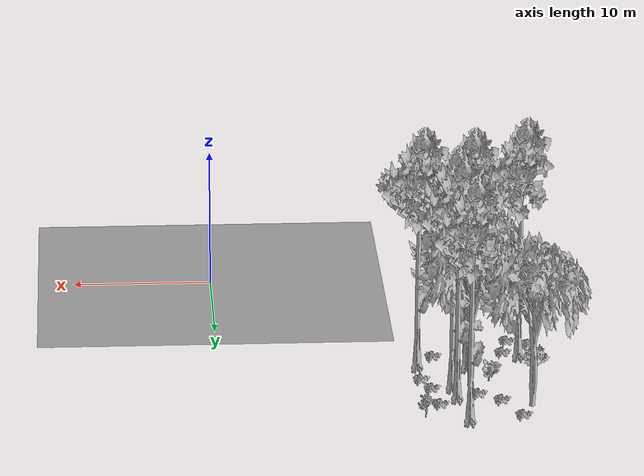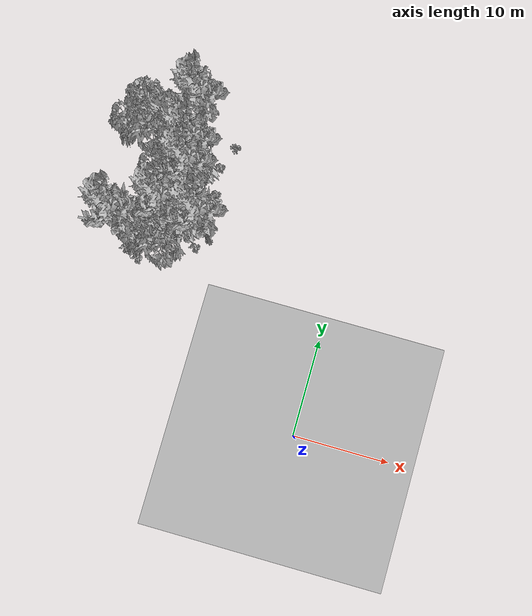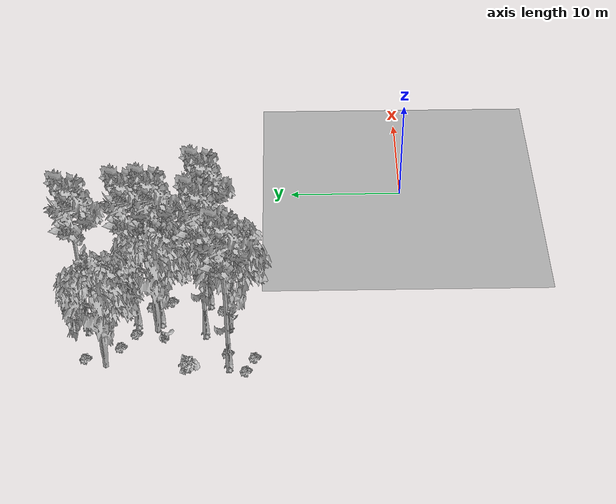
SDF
<sdf version="1.7">
 <world name="default">
  <model name="ground_plane">
   <static>1</static>
   <link name="link">
    <collision name="collision">
     <pose>-50 0 0 0 -0 0</pose>
     <geometry><plane><normal>0 0 1</normal><size>80 80</size></plane></geometry>
     <surface><contact><ode><min_depth>0.01</min_depth><max_vel>0</max_vel></ode></contact></surface>
    </collision>
    <visual name="grass">
     <cast_shadows>0</cast_shadows>
     <geometry>
      <mesh>
       <scale>0.46714285714285714 0.46714285714285714 0.1</scale>
       <uri>file://grass_plane/meshes/grass_plane.dae</uri>
      </mesh>
     </geometry>
    </visual>
   </link>
  </model>
  <model name="Tree 215">
   <static>1</static>
   <pose>-21.153223636318213 15.251283001355446 0 1.57079 -0 0</pose>
   <link name="link">
    <collision name="collision">
     <geometry><mesh><scale>3.5 5 3.5</scale><uri>model://tree_9/meshes/tree_9.obj</uri></mesh></geometry>
    </collision>
    <visual name="visual">
     <geometry><mesh><scale>3.5 5 3.5</scale><uri>model://tree_9/meshes/tree_9.obj</uri></mesh></geometry>
    </visual>
   </link>
  </model>
  <model name="Tree 253">
   <static>1</static>
   <pose>-16.202000682654067 22.970142776075697 0 1.57079 -0 0</pose>
   <link name="link">
    <collision name="collision">
     <geometry><mesh><scale>3.5 5 3.5</scale><uri>model://tree_9/meshes/tree_9.obj</uri></mesh></geometry>
    </collision>
    <visual name="visual">
     <geometry><mesh><scale>3.5 5 3.5</scale><uri>model://tree_9/meshes/tree_9.obj</uri></mesh></geometry>
    </visual>
   </link>
  </model>
  <model name="Tree 360">
   <static>1</static>
   <pose>-16.001091045612633 21.008470187019554 0 1.57079 -0 0</pose>
   <link name="link">
    <collision name="collision">
     <geometry><mesh><scale>3.5 5 3.5</scale><uri>model://tree_9/meshes/tree_9.obj</uri></mesh></geometry>
    </collision>
    <visual name="visual">
     <geometry><mesh><scale>3.5 5 3.5</scale><uri>model://tree_9/meshes/tree_9.obj</uri></mesh></geometry>
    </visual>
   </link>
  </model>
  <model name="Tree 435">
   <static>1</static>
   <pose>-17.513646760298695 15.22128792381936 0 1.57079 -0 0</pose>
   <link name="link">
    <collision name="collision">
     <geometry><mesh><scale>3.5 5 3.5</scale><uri>model://tree_2/meshes/tree_2.obj</uri></mesh></geometry>
    </collision>
    <visual name="visual">
     <geometry><mesh><scale>3.5 5 3.5</scale><uri>model://tree_2/meshes/tree_2.obj</uri></mesh></geometry>
    </visual>
   </link>
  </model>
  <model name="Tree 460">
   <static>1</static>
   <pose>-16.73608095522011 27.13260293383604 0 1.57079 -0 0</pose>
   <link name="link">
    <collision name="collision">
     <geometry><mesh><scale>3.5 5 3.5</scale><uri>model://tree_9/meshes/tree_9.obj</uri></mesh></geometry>
    </collision>
    <visual name="visual">
     <geometry><mesh><scale>3.5 5 3.5</scale><uri>model://tree_9/meshes/tree_9.obj</uri></mesh></geometry>
    </visual>
   </link>
  </model>
  <model name="Tree 465">
   <static>1</static>
   <pose>-17.355817036916513 17.26013249398239 0 1.57079 -0 0</pose>
   <link name="link">
    <collision name="collision">
     <geometry><mesh><scale>3.5 5 3.5</scale><uri>model://tree_9/meshes/tree_9.obj</uri></mesh></geometry>
    </collision>
    <visual name="visual">
     <geometry><mesh><scale>3.5 5 3.5</scale><uri>model://tree_9/meshes/tree_9.obj</uri></mesh></geometry>
    </visual>
   </link>
  </model>
  <model name="Tree 508">
   <static>1</static>
   <pose>-21.241281461936147 25.254190149325396 0 1.57079 -0 0</pose>
   <link name="link">
    <collision name="collision">
     <geometry><mesh><scale>3.5 5 3.5</scale><uri>model://tree_2/meshes/tree_2.obj</uri></mesh></geometry>
    </collision>
    <visual name="visual">
     <geometry><mesh><scale>3.5 5 3.5</scale><uri>model://tree_2/meshes/tree_2.obj</uri></mesh></geometry>
    </visual>
   </link>
  </model>
  <model name="Tree 532">
   <static>1</static>
   <pose>-17.357434409369926 21.249549831313637 0 1.57079 -0 0</pose>
   <link name="link">
    <collision name="collision">
     <geometry><mesh><scale>3.5 5 3.5</scale><uri>model://tree_2/meshes/tree_2.obj</uri></mesh></geometry>
    </collision>
    <visual name="visual">
     <geometry><mesh><scale>3.5 5 3.5</scale><uri>model://tree_2/meshes/tree_2.obj</uri></mesh></geometry>
    </visual>
   </link>
  </model>
  <model name="Tree 561">
   <static>1</static>
   <pose>-13.902613666812858 16.982020571642657 0 1.57079 -0 0</pose>
   <link name="link">
    <collision name="collision">
     <geometry><mesh><scale>3.5 5 3.5</scale><uri>model://tree_9/meshes/tree_9.obj</uri></mesh></geometry>
    </collision>
    <visual name="visual">
     <geometry><mesh><scale>3.5 5 3.5</scale><uri>model://tree_9/meshes/tree_9.obj</uri></mesh></geometry>
    </visual>
   </link>
  </model>
  <model name="Bush 42">
   <static>1</static>
   <pose>-13.942028592706322 20.186080810751584 0 1.57079 -0 0</pose>
   <link name="link">
    <collision name="collision">
     <geometry><mesh><scale>2 2 2</scale><uri>model://bush_2/meshes/bush_2.obj</uri></mesh></geometry>
     <surface><contact><collide_without_contact>false</collide_without_contact></contact></surface>
    </collision>
    <visual name="visual">
     <geometry><mesh><scale>2 2 2</scale><uri>model://bush_2/meshes/bush_2.obj</uri></mesh></geometry>
    </visual>
   </link>
  </model>
  <model name="Bush 46">
   <static>1</static>
   <pose>-17.668094830917617 22.998816513896536 0 1.57079 -0 0</pose>
   <link name="link">
    <collision name="collision">
     <geometry><mesh><scale>2 2 2</scale><uri>model://bush_2/meshes/bush_2.obj</uri></mesh></geometry>
     <surface><contact><collide_without_contact>false</collide_without_contact></contact></surface>
    </collision>
    <visual name="visual">
     <geometry><mesh><scale>2 2 2</scale><uri>model://bush_2/meshes/bush_2.obj</uri></mesh></geometry>
    </visual>
   </link>
  </model>
  <model name="Bush 110">
   <static>1</static>
   <pose>-20.026507941437643 15.351264943415899 0 1.57079 -0 0</pose>
   <link name="link">
    <collision name="collision">
     <geometry><mesh><scale>2 2 2</scale><uri>model://bush_2/meshes/bush_2.obj</uri></mesh></geometry>
     <surface><contact><collide_without_contact>false</collide_without_contact></contact></surface>
    </collision>
    <visual name="visual">
     <geometry><mesh><scale>2 2 2</scale><uri>model://bush_2/meshes/bush_2.obj</uri></mesh></geometry>
    </visual>
   </link>
  </model>
  <model name="Bush 276">
   <static>1</static>
   <pose>-15.077946800201321 15.86495696688096 0 1.57079 -0 0</pose>
   <link name="link">
    <collision name="collision">
     <geometry><mesh><scale>2 2 2</scale><uri>model://bush_2/meshes/bush_2.obj</uri></mesh></geometry>
     <surface><contact><collide_without_contact>false</collide_without_contact></contact></surface>
    </collision>
    <visual name="visual">
     <geometry><mesh><scale>2 2 2</scale><uri>model://bush_2/meshes/bush_2.obj</uri></mesh></geometry>
    </visual>
   </link>
  </model>
  <model name="Bush 281">
   <static>1</static>
   <pose>-14.931215684557312 24.77254393663698 0 1.57079 -0 0</pose>
   <link name="link">
    <collision name="collision">
     <geometry><mesh><scale>2 2 2</scale><uri>model://bush_2/meshes/bush_2.obj</uri></mesh></geometry>
     <surface><contact><collide_without_contact>false</collide_without_contact></contact></surface>
    </collision>
    <visual name="visual">
     <geometry><mesh><scale>2 2 2</scale><uri>model://bush_2/meshes/bush_2.obj</uri></mesh></geometry>
    </visual>
   </link>
  </model>
  <model name="Bush 317">
   <static>1</static>
   <pose>-13.724045086246985 27.035990182723296 0 1.57079 -0 0</pose>
   <link name="link">
    <collision name="collision">
     <geometry><mesh><scale>2 2 2</scale><uri>model://bush_5/meshes/bush_5.obj</uri></mesh></geometry>
     <surface><contact><collide_without_contact>false</collide_without_contact></contact></surface>
    </collision>
    <visual name="visual">
     <geometry><mesh><scale>2 2 2</scale><uri>model://bush_5/meshes/bush_5.obj</uri></mesh></geometry>
    </visual>
   </link>
  </model>
  <model name="Bush 401">
   <static>1</static>
   <pose>-19.172371079136077 24.18830953336655 0 1.57079 -0 0</pose>
   <link name="link">
    <collision name="collision">
     <geometry><mesh><scale>2 2 2</scale><uri>model://bush_2/meshes/bush_2.obj</uri></mesh></geometry>
     <surface><contact><collide_without_contact>false</collide_without_contact></contact></surface>
    </collision>
    <visual name="visual">
     <geometry><mesh><scale>2 2 2</scale><uri>model://bush_2/meshes/bush_2.obj</uri></mesh></geometry>
    </visual>
   </link>
  </model>
  <model name="Bush 431">
   <static>1</static>
   <pose>-20.52712446382393 13.142864073858917 0 1.57079 -0 0</pose>
   <link name="link">
    <collision name="collision">
     <geometry><mesh><scale>2 2 2</scale><uri>model://bush_2/meshes/bush_2.obj</uri></mesh></geometry>
     <surface><contact><collide_without_contact>false</collide_without_contact></contact></surface>
    </collision>
    <visual name="visual">
     <geometry><mesh><scale>2 2 2</scale><uri>model://bush_2/meshes/bush_2.obj</uri></mesh></geometry>
    </visual>
   </link>
  </model>
  <model name="Bush 477">
   <static>1</static>
   <pose>-22.007631482222198 13.850349579756873 0 1.57079 -0 0</pose>
   <link name="link">
    <collision name="collision">
     <geometry><mesh><scale>2 2 2</scale><uri>model://bush_2/meshes/bush_2.obj</uri></mesh></geometry>
     <surface><contact><collide_without_contact>false</collide_without_contact></contact></surface>
    </collision>
    <visual name="visual">
     <geometry><mesh><scale>2 2 2</scale><uri>model://bush_2/meshes/bush_2.obj</uri></mesh></geometry>
    </visual>
   </link>
  </model>
  <model name="Bush 513">
   <static>1</static>
   <pose>-20.390498994414788 26.99418110639742 0 1.57079 -0 0</pose>
   <link name="link">
    <collision name="collision">
     <geometry><mesh><scale>2 2 2</scale><uri>model://bush_2/meshes/bush_2.obj</uri></mesh></geometry>
     <surface><contact><collide_without_contact>false</collide_without_contact></contact></surface>
    </collision>
    <visual name="visual">
     <geometry><mesh><scale>2 2 2</scale><uri>model://bush_2/meshes/bush_2.obj</uri></mesh></geometry>
    </visual>
   </link>
  </model>
  <model name="Bush 598">
   <static>1</static>
   <pose>-18.616377942555676 20.587447106951885 0 1.57079 -0 0</pose>
   <link name="link">
    <collision name="collision">
     <geometry><mesh><scale>2 2 2</scale><uri>model://bush_0/meshes/bush_0.obj</uri></mesh></geometry>
     <surface><contact><collide_without_contact>false</collide_without_contact></contact></surface>
    </collision>
    <visual name="visual">
     <geometry><mesh><scale>2 2 2</scale><uri>model://bush_0/meshes/bush_0.obj</uri></mesh></geometry>
    </visual>
   </link>
  </model>
  <model name="Bush 603">
   <static>1</static>
   <pose>-14.554280538438665 21.85923691384741 0 1.57079 -0 0</pose>
   <link name="link">
    <collision name="collision">
     <geometry><mesh><scale>2 2 2</scale><uri>model://bush_2/meshes/bush_2.obj</uri></mesh></geometry>
     <surface><contact><collide_without_contact>false</collide_without_contact></contact></surface>
    </collision>
    <visual name="visual">
     <geometry><mesh><scale>2 2 2</scale><uri>model://bush_2/meshes/bush_2.obj</uri></mesh></geometry>
    </visual>
   </link>
  </model>
  <model name="Bush 638">
   <static>1</static>
   <pose>-22.01880297633865 18.373471040904505 0 1.57079 -0 0</pose>
   <link name="link">
    <collision name="collision">
     <geometry><mesh><scale>2 2 2</scale><uri>model://bush_1/meshes/bush_1.obj</uri></mesh></geometry>
     <surface><contact><collide_without_contact>false</collide_without_contact></contact></surface>
    </collision>
    <visual name="visual">
     <geometry><mesh><scale>2 2 2</scale><uri>model://bush_1/meshes/bush_1.obj</uri></mesh></geometry>
    </visual>
   </link>
  </model>
 </world>
</sdf>
